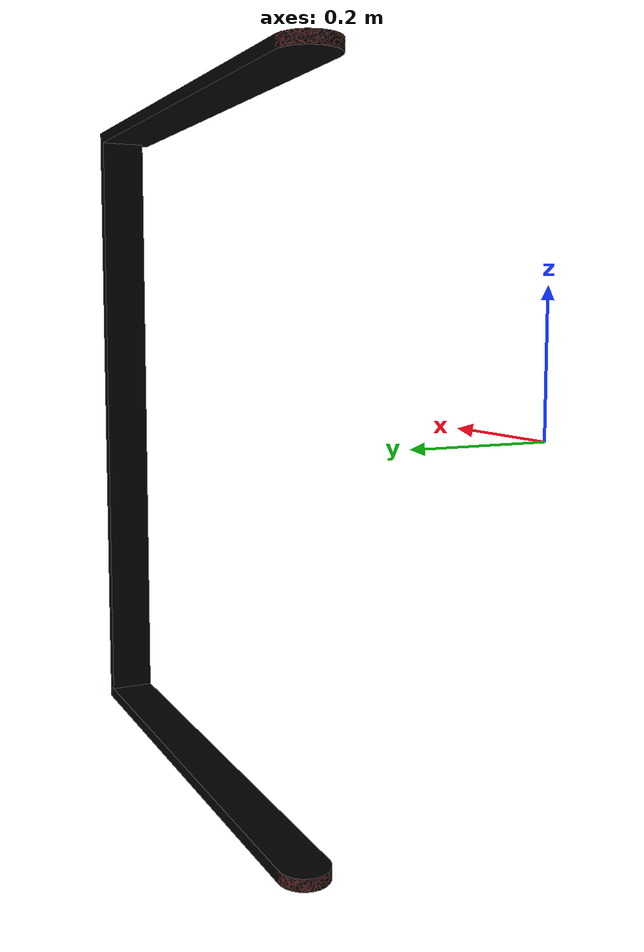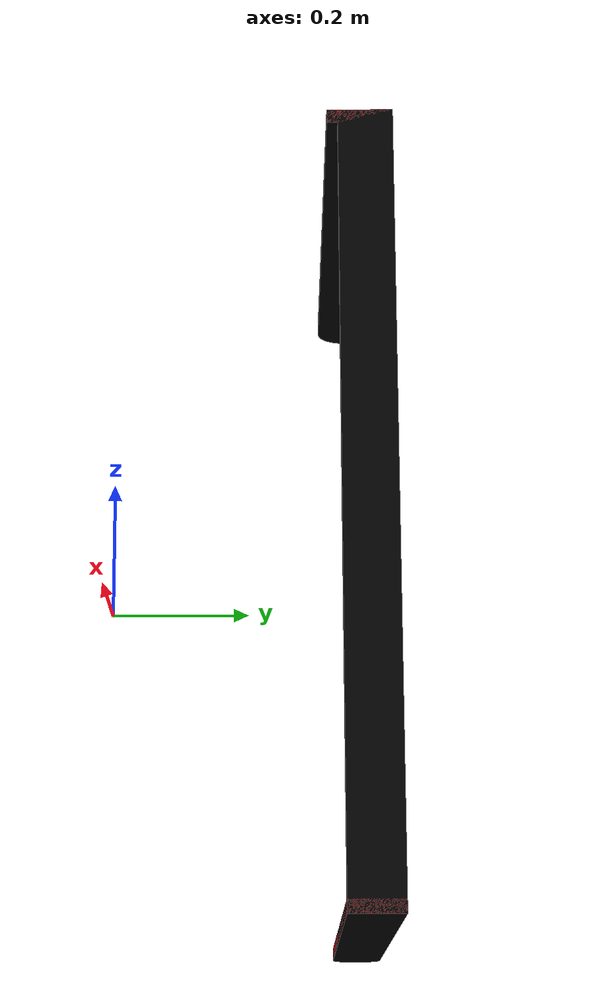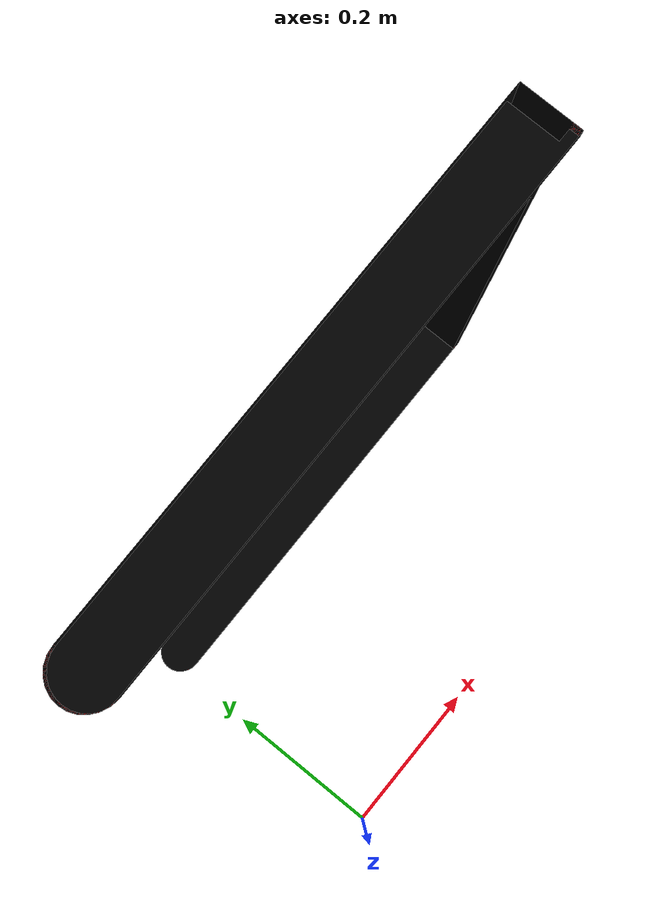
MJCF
<mujoco model="original-1">
  <default>
    <default class="visual">
      <geom group="2" type="mesh" contype="0" conaffinity="0"/>
    </default>
    <default class="collision">
      <geom group="3" type="mesh"/>
    </default>
  </default>
  <asset>
    <material name="material_0_0" specular="0.06666666666666667" shininess="0.03" rgba="1 0 0 1"/>
    <material name="material_1_0" specular="0.06666666666666667" shininess="0.03" rgba="0 0 0 1"/>
    <mesh file="original-1_0.obj"/>
    <mesh file="original-1_1.obj"/>
  </asset>
  <worldbody>
    <body name="original-1">
      <geom mesh="original-1_0" material="material_1_0" class="visual"/>
      <geom mesh="original-1_1" material="material_0_0" class="visual"/>
      <geom mesh="original-1_0" class="collision"/>
      <geom mesh="original-1_1" class="collision"/>
    </body>
  </worldbody>
</mujoco>
